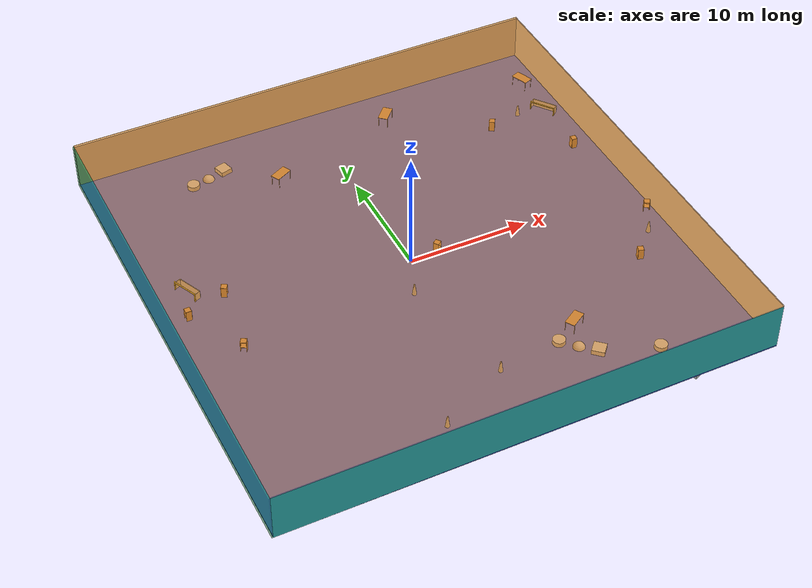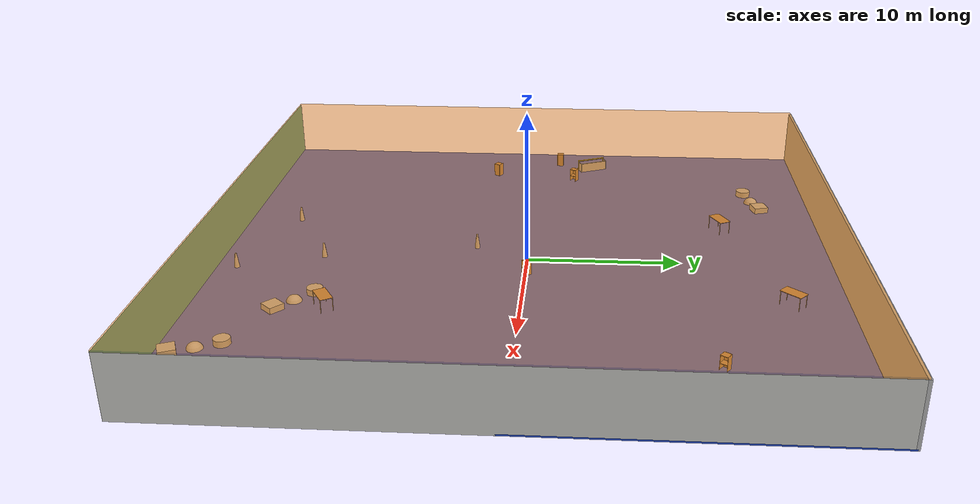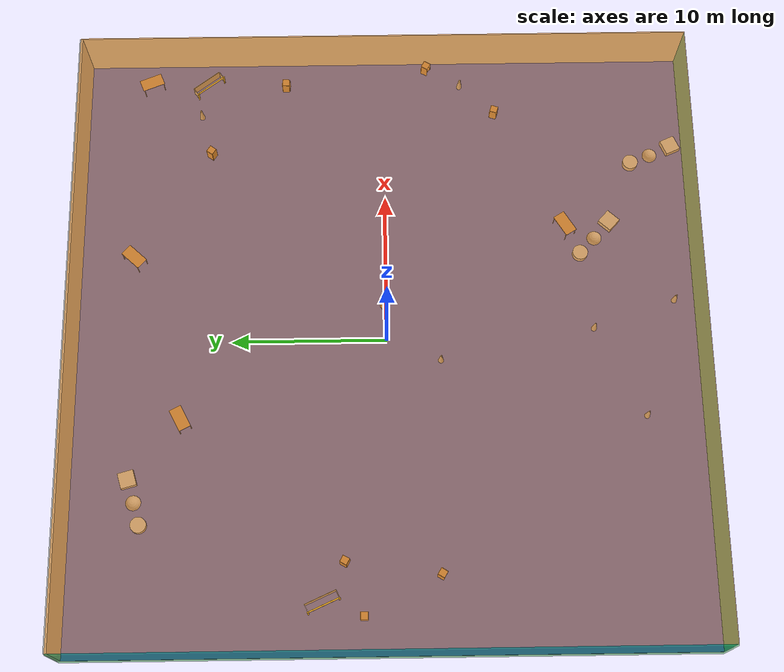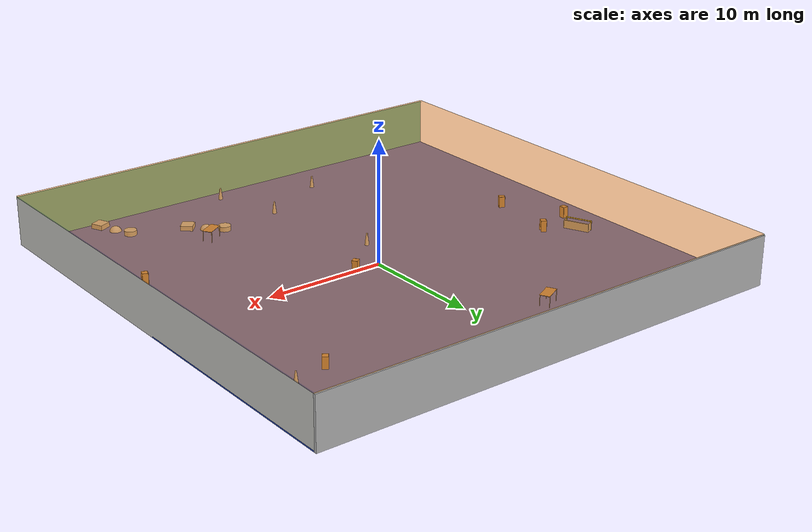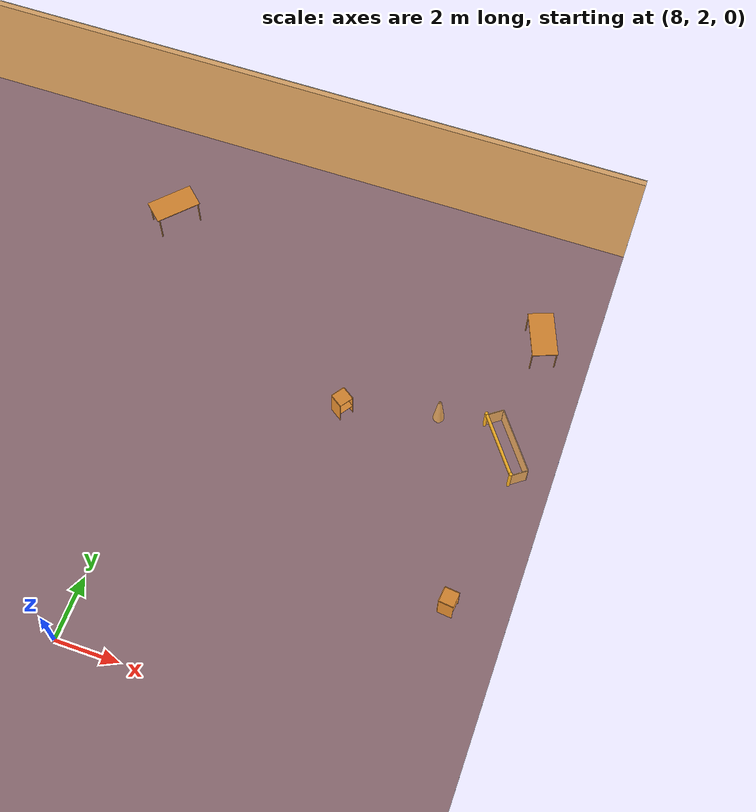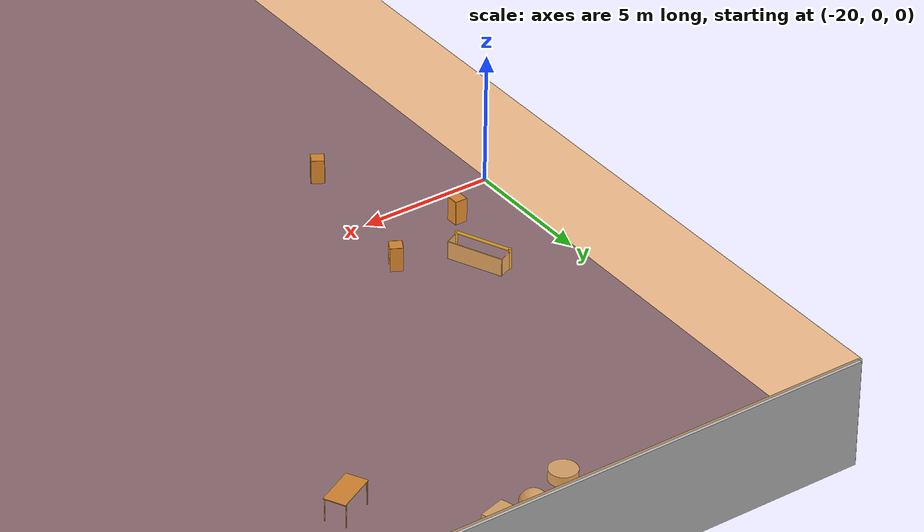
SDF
<sdf version="1.4">
 <world name="default">
  <physics type="ode">
   <max_step_size>0.001</max_step_size>
   <real_time_factor>1</real_time_factor>
   <real_time_update_rate>1000</real_time_update_rate>
   <gravity>0 0 -9.8</gravity>
  </physics>
  <scene><ambient>0.4 0.4 0.4 1</ambient><background>0.7 0.7 0.7 1</background><shadows>1</shadows></scene>
  <model name="Surrounding">
   <static>1</static>
   <link name="Ceiling">
    <collision name="Ceiling_Collision"><geometry><box><size>40 40 0.1</size></box></geometry></collision>
    <visual name="Ceiling_Visual">
     <geometry><box><size>40 40 0.1</size></box></geometry>
     <material>
      <script>
       <uri>file://media/materials/scripts/gazebo.material</uri>
       <name>Gazebo/OrangeTransparent</name>
      </script>
     </material>
    </visual>
    <pose>0 0 4.05 0 0 0</pose>
   </link>
   <link name="Wall_South">
    <collision name="Wall_South_Collision">
     <geometry><box><size>40 0 4</size></box></geometry>
     <pose>0 0 2 0 -0 0</pose>
    </collision>
    <visual name="Wall_South_Visual">
     <pose>0 0 2 0 -0 0</pose>
     <geometry><box><size>40 0 4</size></box></geometry>
     <material>
      <script><uri>file://media/materials/scripts/gazebo.material</uri><name>Gazebo/TurquoiseGlow</name></script>
     </material>
    </visual>
    <velocity_decay><linear>0</linear><angular>0</angular></velocity_decay>
    <pose>0 -20 0 0 -0 0</pose>
   </link>
   <link name="Wall_East">
    <collision name="Wall_21_Collision">
     <geometry><box><size>40 0 4</size></box></geometry>
     <pose>0 0 2 0 -0 0</pose>
    </collision>
    <visual name="Wall_21_Visual">
     <pose>0 0 2 0 -0 0</pose>
     <geometry><box><size>40 0 4</size></box></geometry>
     <material>
      <script><uri>file://media/materials/scripts/gazebo.material</uri><name>Gazebo/CeilingTiled</name></script>
     </material>
    </visual>
    <velocity_decay><linear>0</linear><angular>0</angular></velocity_decay>
    <pose>20 0 0 0 -0 1.5708</pose>
   </link>
   <link name="Wall_North">
    <collision name="Wall_22_Collision">
     <geometry><box><size>40 0.2 4</size></box></geometry>
     <pose>0 0 2 0 -0 0</pose>
    </collision>
    <visual name="Wall_22_Visual">
     <pose>0 0 2 0 -0 0</pose>
     <geometry><box><size>40 0.2 4</size></box></geometry>
     <material>
      <script><uri>file://media/materials/scripts/gazebo.material</uri><name>Gazebo/Pioneer2Body</name></script>
     </material>
    </visual>
    <velocity_decay><linear>0</linear><angular>0</angular></velocity_decay>
    <pose>0 20 0 0 -0 0</pose>
   </link>
   <link name="Wall_West">
    <collision name="Wall_23_Collision">
     <geometry><box><size>40 0.2 4</size></box></geometry>
     <pose>0 0 2 0 -0 0</pose>
    </collision>
    <visual name="Wall_23_Visual">
     <pose>0 0 2 0 -0 0</pose>
     <geometry><box><size>40 0.2 4</size></box></geometry>
     <material>
      <script><uri>file://media/materials/scripts/gazebo.material</uri><name>Gazebo/GreenTransparent</name></script>
     </material>
    </visual>
    <velocity_decay><linear>0</linear><angular>0</angular></velocity_decay>
    <pose>-20 0 0 0 0 -1.5708</pose>
   </link>
   <link name="Ground_link">
    <collision name="collision">
     <pose>0 0 .05 0 -0 0</pose>
     <geometry><box><size>40 40 0.1</size></box></geometry>
    </collision>
    <visual name="visual">
     <pose>0 0 .05 0 -0 0</pose>
     <geometry><box><size>40 40 0.1</size></box></geometry>
     <material>
      <script><uri>file://media/materials/scripts/gazebo.material</uri><name>Gazebo/BlueLaser</name></script>
     </material>
    </visual>
   </link>
   <static>1</static>
  </model>
  <spherical_coordinates>
   <surface_model>EARTH_WGS84</surface_model>
   <latitude_deg>0</latitude_deg>
   <longitude_deg>0</longitude_deg>
   <elevation>0</elevation>
   <heading_deg>0</heading_deg>
  </spherical_coordinates>
  <light name="lightball_0" type="diffuse">
   <diffuse>0.8 0.8 0.8 1</diffuse>
   <specular>0.2 0.2 0.2 1</specular>
   <attenuation>
    <range>100</range>
    <constant>0.7</constant>
    <linear>0.01</linear>
    <quadratic>0.001</quadratic>
   </attenuation>
   <direction>-0.5 0.1 -0.9</direction>
   <pose>-18.1199409581 -17.3472903174 1.64450559808 0 0 0</pose>
  </light>
  <light name="lightball_1" type="diffuse">
   <diffuse>0.8 0.8 0.8 1</diffuse>
   <specular>0.2 0.2 0.2 1</specular>
   <attenuation>
    <range>100</range>
    <constant>0.7</constant>
    <linear>0.01</linear>
    <quadratic>0.001</quadratic>
   </attenuation>
   <direction>-0.5 0.1 -0.9</direction>
   <pose>12.3560744678 -18.7266612196 0.562377889379 0 0 0</pose>
  </light>
  <light name="lightball_2" type="diffuse">
   <diffuse>0.8 0.8 0.8 1</diffuse>
   <specular>0.2 0.2 0.2 1</specular>
   <attenuation>
    <range>100</range>
    <constant>0.7</constant>
    <linear>0.01</linear>
    <quadratic>0.001</quadratic>
   </attenuation>
   <direction>-0.5 0.1 -0.9</direction>
   <pose>18.1567644439 -0.459195672067 2.9651020018 0 0 0</pose>
  </light>
  <light name="lightball_3" type="diffuse">
   <diffuse>0.8 0.8 0.8 1</diffuse>
   <specular>0.2 0.2 0.2 1</specular>
   <attenuation>
    <range>100</range>
    <constant>0.7</constant>
    <linear>0.01</linear>
    <quadratic>0.001</quadratic>
   </attenuation>
   <direction>-0.5 0.1 -0.9</direction>
   <pose>-3.46898912321 9.98540529407 2.00456885599 0 0 0</pose>
  </light>
  <light name="lightball_4" type="diffuse">
   <diffuse>0.8 0.8 0.8 1</diffuse>
   <specular>0.2 0.2 0.2 1</specular>
   <attenuation>
    <range>100</range>
    <constant>0.7</constant>
    <linear>0.01</linear>
    <quadratic>0.001</quadratic>
   </attenuation>
   <direction>-0.5 0.1 -0.9</direction>
   <pose>-8.30533251935 13.1417839348 3.31917629468 0 0 0</pose>
  </light>
  <light name="lightball_5" type="diffuse">
   <diffuse>0.8 0.8 0.8 1</diffuse>
   <specular>0.2 0.2 0.2 1</specular>
   <attenuation>
    <range>100</range>
    <constant>0.7</constant>
    <linear>0.01</linear>
    <quadratic>0.001</quadratic>
   </attenuation>
   <direction>-0.5 0.1 -0.9</direction>
   <pose>-14.460102279 3.4444152889 1.6528105341 0 0 0</pose>
  </light>
  <light name="lightball_6" type="diffuse">
   <diffuse>0.8 0.8 0.8 1</diffuse>
   <specular>0.2 0.2 0.2 1</specular>
   <attenuation>
    <range>100</range>
    <constant>0.7</constant>
    <linear>0.01</linear>
    <quadratic>0.001</quadratic>
   </attenuation>
   <direction>-0.5 0.1 -0.9</direction>
   <pose>-18.5629126868 -8.65334032622 2.4379685351 0 0 0</pose>
  </light>
  <light name="lightball_7" type="diffuse">
   <diffuse>0.8 0.8 0.8 1</diffuse>
   <specular>0.2 0.2 0.2 1</specular>
   <attenuation>
    <range>100</range>
    <constant>0.7</constant>
    <linear>0.01</linear>
    <quadratic>0.001</quadratic>
   </attenuation>
   <direction>-0.5 0.1 -0.9</direction>
   <pose>3.13776922094 -7.30758565954 2.39168241836 0 0 0</pose>
  </light>
  <light name="lightball_8" type="diffuse">
   <diffuse>0.8 0.8 0.8 1</diffuse>
   <specular>0.2 0.2 0.2 1</specular>
   <attenuation>
    <range>100</range>
    <constant>0.7</constant>
    <linear>0.01</linear>
    <quadratic>0.001</quadratic>
   </attenuation>
   <direction>-0.5 0.1 -0.9</direction>
   <pose>-5.25566786257 -14.5812622574 1.1076088668 0 0 0</pose>
  </light>
  <light name="lightball_9" type="diffuse">
   <diffuse>0.8 0.8 0.8 1</diffuse>
   <specular>0.2 0.2 0.2 1</specular>
   <attenuation>
    <range>100</range>
    <constant>0.7</constant>
    <linear>0.01</linear>
    <quadratic>0.001</quadratic>
   </attenuation>
   <direction>-0.5 0.1 -0.9</direction>
   <pose>7.38504717596 1.01239207128 3.39739155549 0 0 0</pose>
  </light>
  <light name="lightball_10" type="diffuse">
   <diffuse>0.8 0.8 0.8 1</diffuse>
   <specular>0.2 0.2 0.2 1</specular>
   <attenuation>
    <range>100</range>
    <constant>0.7</constant>
    <linear>0.01</linear>
    <quadratic>0.001</quadratic>
   </attenuation>
   <direction>-0.5 0.1 -0.9</direction>
   <pose>12.5857525828 16.4011565694 2.57593600567 0 0 0</pose>
  </light>
  <light name="lightball_11" type="diffuse">
   <diffuse>0.8 0.8 0.8 1</diffuse>
   <specular>0.2 0.2 0.2 1</specular>
   <attenuation>
    <range>100</range>
    <constant>0.7</constant>
    <linear>0.01</linear>
    <quadratic>0.001</quadratic>
   </attenuation>
   <direction>-0.5 0.1 -0.9</direction>
   <pose>-17.5400328721 19.3962669351 2.55556387698 0 0 0</pose>
  </light>
  <light name="lightball_12" type="diffuse">
   <diffuse>0.8 0.8 0.8 1</diffuse>
   <specular>0.2 0.2 0.2 1</specular>
   <attenuation>
    <range>100</range>
    <constant>0.7</constant>
    <linear>0.01</linear>
    <quadratic>0.001</quadratic>
   </attenuation>
   <direction>-0.5 0.1 -0.9</direction>
   <pose>7.60871384739 1.95415581055 2.99051962303 0 0 0</pose>
  </light>
  <light name="lightball_13" type="diffuse">
   <diffuse>0.8 0.8 0.8 1</diffuse>
   <specular>0.2 0.2 0.2 1</specular>
   <attenuation>
    <range>100</range>
    <constant>0.7</constant>
    <linear>0.01</linear>
    <quadratic>0.001</quadratic>
   </attenuation>
   <direction>-0.5 0.1 -0.9</direction>
   <pose>7.87493419143 -10.8844555924 3.16233151768 0 0 0</pose>
  </light>
  <include><uri>model://cabinet</uri><pose>-17.671886101 1.6085855893 0 0 0 0.00366535899582</pose></include>
  <include>
   <uri>model://robocup_3Dsim_goal</uri>
   <pose>-16.9918084596 4.05552362333 0 0 0 0.422545787695</pose>
  </include>
  <include><uri>model://cabinet</uri><pose>-15.1619840253 -3.18233147544 0 0 0 1.02679535335</pose></include>
  <include><uri>model://cabinet</uri><pose>-14.307556645 2.77799976914 0 0 0 2.64114337998</pose></include>
  <include>
   <uri>model://textured_shapes</uri>
   <pose>-10.4394190058 15.9278765605 0 0 0 1.8446535592</pose>
  </include>
  <include>
   <uri>model://construction_cone</uri>
   <pose>-5.25846180174 -16.4125622949 0 0 0 2.8472727402</pose>
  </include>
  <include><uri>model://table</uri><pose>-5.26174183948 13.079954504 0 0 0 0.470533027016</pose></include>
  <include>
   <uri>model://construction_cone</uri>
   <pose>-1.41230397351 -3.43363965536 0 0 0 2.66375701268</pose>
  </include>
  <include>
   <uri>model://construction_cone</uri>
   <pose>0.61166539744 -13.3743628607 0 0 0 0.84493030012</pose>
  </include>
  <include>
   <uri>model://construction_cone</uri>
   <pose>2.47208458439 -18.6980704547 0 0 0 0.673886271189</pose>
  </include>
  <include><uri>model://cabinet</uri><pose>2.30664636241 0.113471907309 0 0 0 2.16041192757</pose></include>
  <include>
   <uri>model://textured_shapes</uri>
   <pose>6.9119067155 -13.7542882694 0 0 0 0.834584806024</pose>
  </include>
  <include><uri>model://table</uri><pose>7.62941386341 -11.7791751409 0 0 0 0.553112685354</pose></include>
  <include><uri>model://table</uri><pose>5.67275479944 16.4032534878 0 0 0 0.826545389728</pose></include>
  <include>
   <uri>model://textured_shapes</uri>
   <pose>12.8536491889 -17.8257095413 0 0 0 0.412819849285</pose>
  </include>
  <include><uri>model://cabinet</uri><pose>13.2492215117 11.5541735812 0 0 0 2.54592667612</pose></include>
  <include><uri>model://cabinet</uri><pose>16.0378691936 -7.42463614565 0 0 0 2.83214663727</pose></include>
  <include>
   <uri>model://construction_cone</uri>
   <pose>16.1073474717 12.3174560311 0 0 0 0.563699877513</pose>
  </include>
  <include>
   <uri>model://construction_cone</uri>
   <pose>18.1925537438 -5.16919068993 0 0 0 1.73249170677</pose>
  </include>
  <include><uri>model://cabinet</uri><pose>19.4121276745 -2.90230135262 0 0 0 1.065292885</pose></include>
  <include><uri>model://cabinet</uri><pose>18.2294033386 6.60973189204 0 0 0 3.04383069786</pose></include>
  <include>
   <uri>model://robocup_3Dsim_goal</uri>
   <pose>18.13963859 11.7054500335 0 0 0 0.642272851454</pose>
  </include>
  <include><uri>model://table</uri><pose>18.3596179024 15.6908915938 0 0 0 1.9453555424</pose></include>
 </world>
</sdf>

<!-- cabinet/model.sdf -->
<sdf version="1.5">
  <model name="cabinet">
    <static>true</static>
    <link name="cabinet_bottom_plate">
      <inertial>
        <pose>0 0 -1 0 0 0</pose>
        <inertia>
          <ixx>2.050000</ixx>
          <ixy>0</ixy>
          <ixz>0</ixz>
          <iyy>2.050000</iyy>
          <iyz>0</iyz>
          <izz>2.050000</izz>
        </inertia>
        <mass>25.000000</mass>
      </inertial>
      <collision name="cabinet_bottom_plate_geom">
        <pose>0 0 0.010000 0 0 0</pose>
        <geometry>
          <box>
            <size>0.450000 0.450000 0.020000</size>
          </box>
        </geometry>
      </collision>
      <visual name="cabinet_bottom_plate_geom_visual">
        <pose>0 0 0.010000 0 0 0</pose>
        <geometry>
          <box>
            <size>0.450000 0.450000 0.020000</size>
          </box>
        </geometry>
        <material>
          <script>
            <uri>model://media/materials/scripts/gazebo.material</uri>
            <name>Gazebo/Wood</name>
          </script>
        </material>
      </visual>
      <collision name="cabinet_bottom_plate_geom_cabinet_back_plate">
        <pose>0.235000 0 0.510000 0 0 0</pose>
        <geometry>
          <box>
            <size>0.020000 0.450000 1.020000</size>
          </box>
        </geometry>
      </collision>
      <visual name="cabinet_bottom_plate_geom_cabinet_back_plate_visual">
        <pose>0.235000 0 0.510000 0 0 0</pose>
        <geometry>
          <box>
            <size>0.020000 0.450000 1.020000</size>
          </box>
        </geometry>
        <material>
          <script>
            <uri>model://media/materials/scripts/gazebo.material</uri>
            <name>Gazebo/Wood</name>
          </script>
        </material>
      </visual>
      <collision name="cabinet_bottom_plate_geom_cabinet_left_plate">
        <pose>0 0.235000 0.510000 0 0 0</pose>
        <geometry>
          <box>
            <size>0.450000 0.020000 1.020000</size>
          </box>
        </geometry>
      </collision>
      <visual name="cabinet_bottom_plate_geom_cabinet_left_plate_visual">
        <pose>0 0.235000 0.510000 0 0 0</pose>
        <geometry>
          <box>
            <size>0.450000 0.020000 1.020000</size>
          </box>
        </geometry>
        <material>
          <script>
            <uri>model://media/materials/scripts/gazebo.material</uri>
            <name>Gazebo/Wood</name>
          </script>
        </material>
      </visual>
      <collision name="cabinet_bottom_plate_geom_cabinet_middle_plate">
        <pose>0 0 0.510000 0 0 0</pose>
        <geometry>
          <box>
            <size>0.450000 0.450000 0.020000</size>
          </box>
        </geometry>
      </collision>
      <visual name="cabinet_bottom_plate_geom_cabinet_middle_plate_visual">
        <pose>0 0 0.510000 0 0 0</pose>
        <geometry>
          <box>
            <size>0.450000 0.450000 0.020000</size>
          </box>
        </geometry>
        <material>
          <script>
            <uri>model://media/materials/scripts/gazebo.material</uri>
            <name>Gazebo/Wood</name>
          </script>
        </material>
      </visual>
      <collision name="cabinet_bottom_plate_geom_cabinet_right_plate">
        <pose>0 -0.235000 0.510000 0 0 0</pose>
        <geometry>
          <box>
            <size>0.450000 0.020000 1.020000</size>
          </box>
        </geometry>
      </collision>
      <visual name="cabinet_bottom_plate_geom_cabinet_right_plate_visual">
        <pose>0 -0.235000 0.510000 0 0 0</pose>
        <geometry>
          <box>
            <size>0.450000 0.020000 1.020000</size>
          </box>
        </geometry>
        <material>
          <script>
            <uri>model://media/materials/scripts/gazebo.material</uri>
            <name>Gazebo/Wood</name>
          </script>
        </material>
      </visual>
      <collision name="cabinet_bottom_plate_geom_cabinet_top_plate">
        <pose>0 0 1.010000 0 0 0</pose>
        <geometry>
          <box>
            <size>0.450000 0.450000 0.020000</size>
          </box>
        </geometry>
      </collision>
      <visual name="cabinet_bottom_plate_geom_cabinet_top_plate_visual">
        <pose>0 0 1.010000 0 0 0</pose>
        <geometry>
          <box>
            <size>0.450000 0.450000 0.020000</size>
          </box>
        </geometry>
        <material>
          <script>
            <uri>model://media/materials/scripts/gazebo.material</uri>
            <name>Gazebo/Wood</name>
          </script>
        </material>
      </visual>
    </link>
  </model>
</sdf>

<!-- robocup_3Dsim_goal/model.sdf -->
<sdf version="1.5">
  <model name="robocup_3d_goal">
    <static>true</static>
    <link name="left_post">
      <pose>0 1.05 0.45 0 0 0</pose>
      <collision name="collision">
        <geometry>
          <cylinder>
            <radius>0.05</radius>
            <length>0.9</length>
          </cylinder>
        </geometry>
      </collision>
      <visual name="visual">
        <geometry>
          <cylinder>
            <radius>0.05</radius>
            <length>0.9</length>
          </cylinder>
        </geometry>
        <material>
          <script>
            <uri>file://media/materials/scripts/gazebo.material</uri>
            <name>Gazebo/ZincYellow</name>
          </script>
        </material>
      </visual>
    </link>
    <link name="left_support_horiz_lower">
      <pose>0.30 1.05 0.01 0 0 0</pose>
      <collision name="collision">
        <geometry>
          <box>
            <size>0.50 0.02 0.02</size>
          </box>
        </geometry>
      </collision>
      <visual name="visual">
        <geometry>
          <box>
            <size>0.50 0.02 0.02</size>
          </box>
        </geometry>
        <material>
          <script>
            <uri>file://media/materials/scripts/gazebo.material</uri>
            <name>Gazebo/White</name>
          </script>
        </material>
      </visual>
    </link>
    <link name="left_support_horiz_upper">
      <pose>0.30 1.05 0.79 0 0 0</pose>
      <collision name="collision">
        <geometry>
          <box>
            <size>0.50 0.02 0.02</size>
          </box>
        </geometry>
      </collision>
      <visual name="visual">
        <geometry>
          <box>
            <size>0.50 0.02 0.02</size>
          </box>
        </geometry>
        <material>
          <script>
            <uri>file://media/materials/scripts/gazebo.material</uri>
            <name>Gazebo/White</name>
          </script>
        </material>
      </visual>
    </link>
    <link name="left_support_vertical">
      <pose>0.56 1.05 0.4 0 1.5708 0</pose>
      <collision name="collision">
        <geometry>
          <box>
            <size>0.80 0.02 0.02</size>
          </box>
        </geometry>
      </collision>
      <visual name="visual">
        <geometry>
          <box>
            <size>0.80 0.02 0.02</size>
          </box>
        </geometry>
        <material>
          <script>
            <uri>file://media/materials/scripts/gazebo.material</uri>
            <name>Gazebo/White</name>
          </script>
        </material>
      </visual>
    </link>
    <link name="right_support_horiz_lower">
      <pose>0.30 -1.05 0.01 0 0 0</pose>
      <collision name="collision">
        <geometry>
          <box>
            <size>0.50 0.02 0.02</size>
          </box>
        </geometry>
      </collision>
      <visual name="visual">
        <geometry>
          <box>
            <size>0.50 0.02 0.02</size>
          </box>
        </geometry>
        <material>
          <script>
            <uri>file://media/materials/scripts/gazebo.material</uri>
            <name>Gazebo/White</name>
          </script>
        </material>
      </visual>
    </link>
    <link name="right_support_horiz_upper">
      <pose>0.30 -1.05 0.79 0 0 0</pose>
      <collision name="collision">
        <geometry>
          <box>
            <size>0.50 0.02 0.02</size>
          </box>
        </geometry>
      </collision>
      <visual name="visual">
        <geometry>
          <box>
            <size>0.50 0.02 0.02</size>
          </box>
        </geometry>
        <material>
          <script>
            <uri>file://media/materials/scripts/gazebo.material</uri>
            <name>Gazebo/White</name>
          </script>
        </material>
      </visual>
    </link>
    <link name="right_support_vertical">
      <pose>0.56 -1.05 0.4 0 1.5708 0</pose>
      <collision name="collision">
        <geometry>
          <box>
            <size>0.80 0.02 0.02</size>
          </box>
        </geometry>
      </collision>
      <visual name="visual">
        <geometry>
          <box>
            <size>0.80 0.02 0.02</size>
          </box>
        </geometry>
        <material>
          <script>
            <uri>file://media/materials/scripts/gazebo.material</uri>
            <name>Gazebo/White</name>
          </script>
        </material>
      </visual>
    </link>
    <link name="center_support_horiz_lower">
      <pose>0.56 0 0.01 0 1.5708 0</pose>
      <collision name="collision">
        <geometry>
          <box>
            <size>0.02 2.08 0.02</size>
          </box>
        </geometry>
      </collision>
      <visual name="visual">
        <geometry>
          <box>
            <size>0.02 2.08 0.02</size>
          </box>
        </geometry>
        <material>
          <script>
            <uri>file://media/materials/scripts/gazebo.material</uri>
            <name>Gazebo/White</name>
          </script>
        </material>
      </visual>
    </link>
    <link name="center_support_horiz_upper">
      <pose>0.56 0 0.79 0 1.5708 0</pose>
      <collision name="collision">
        <geometry>
          <box>
            <size>0.02 2.08 0.02</size>
          </box>
        </geometry>
      </collision>
      <visual name="visual">
        <geometry>
          <box>
            <size>0.02 2.08 0.02</size>
          </box>
        </geometry>
        <material>
          <script>
            <uri>file://media/materials/scripts/gazebo.material</uri>
            <name>Gazebo/White</name>
          </script>
        </material>
      </visual>
    </link>
    <link name="right_post">
      <pose>0 -1.05 0.45 0 0 0</pose>
      <collision name="collision">
        <geometry>
          <cylinder>
            <radius>0.05</radius>
            <length>0.9</length>
          </cylinder>
        </geometry>
      </collision>
      <visual name="visual">
        <geometry>
          <cylinder>
            <radius>0.05</radius>
            <length>0.9</length>
          </cylinder>
        </geometry>
        <material>
          <script>
            <uri>file://media/materials/scripts/gazebo.material</uri>
            <name>Gazebo/ZincYellow</name>
          </script>
        </material>
      </visual>
    </link>
    <link name="crossbar">
      <pose>0 0 0.85 1.57 1.57 0</pose>
      <collision name="collision">
        <geometry>
          <cylinder>
            <radius>0.05</radius>
            <length>2.0</length>
          </cylinder>
        </geometry>
      </collision>
      <visual name="visual">
        <geometry>
          <cylinder>
            <radius>0.05</radius>
            <length>2.0</length>
          </cylinder>
        </geometry>
        <material>
          <script>
            <uri>file://media/materials/scripts/gazebo.material</uri>
            <name>Gazebo/ZincYellow</name>
          </script>
        </material>
      </visual>
    </link>
    <link name="center_net">
      <pose>0.56 0 0.40 0 0 0</pose>
      <collision name="collision">
        <geometry>
          <box>
            <size>0.01 2.1 0.80</size>
          </box>
        </geometry>
      </collision>
      <visual name="visual">
        <geometry>
          <box>
            <size>0.01 2.1 0.80</size>
          </box>
        </geometry>
        <material>
          <script>
            <uri>model://../model_source/models/robocup09_spl_field/materials/scripts/</uri>
            <uri>model://../model_source/models/robocup09_spl_field/materials/textures/</uri>
            <name>RoboCup/Net</name>
          </script>
        </material>
      </visual>
    </link>
    <link name="left_net">
      <pose>0.30 1.05 0.40 0 0 0</pose>
      <collision name="collision">
        <geometry>
          <box>
            <size>0.50 0.01 0.76</size>
          </box>
        </geometry>
      </collision>
      <visual name="visual">
        <geometry>
          <box>
            <size>0.50 0.01 0.76</size>
          </box>
        </geometry>
        <material>
          <script>
            <uri>model://../model_source/models/robocup09_spl_field/materials/scripts/</uri>
            <uri>model://../model_source/models/robocup09_spl_field/materials/textures/</uri>
            <name>RoboCup/Net</name>
          </script>
        </material>
      </visual>
    </link>
    <link name="right_net">
      <pose>0.30 -1.05 0.40 0 0 0</pose>
      <collision name="collision">
        <geometry>
          <box>
            <size>0.50 0.01 0.76</size>
          </box>
        </geometry>
      </collision>
      <visual name="visual">
        <geometry>
          <box>
            <size>0.50 0.01 0.76</size>
          </box>
        </geometry>
        <material>
          <script>
            <uri>model://../model_source/models/robocup09_spl_field/materials/scripts/</uri>
            <uri>model://../model_source/models/robocup09_spl_field/materials/textures/</uri>
            <name>RoboCup/Net</name>
          </script>
        </material>
      </visual>
    </link>
  </model>
</sdf>

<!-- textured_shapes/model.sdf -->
<sdf version="1.6">
  <model name="textured_shapes">
    <pose>0 0 0.5 0 0 0</pose>
    <link name="box">
      <pose>0 -1.5 0 0 0 0</pose>
      <collision name="collision">
        <geometry>
          <box>
            <size>1 1 1</size>
          </box>
        </geometry>
      </collision>
      <visual name="visual">
        <geometry>
          <box>
            <size>1 1 1</size>
          </box>
        </geometry>
        <material>
          <script>
            <uri>model://../model_source/models/textured_shapes/materials/scripts</uri>
            <uri>model://../model_source/models/textured_shapes/materials/textures</uri>
            <name>TexturedShape/Squares</name>
          </script>
        </material>
      </visual>
    </link>
    <link name="sphere">
      <collision name="collision">
        <geometry>
          <sphere>
            <radius>0.5</radius>
          </sphere>
        </geometry>
      </collision>
      <visual name="visual">
        <geometry>
          <sphere>
            <radius>0.5</radius>
          </sphere>
        </geometry>
        <material>
          <script>
            <uri>model://../model_source/models/textured_shapes/materials/scripts</uri>
            <uri>model://../model_source/models/textured_shapes/materials/textures</uri>
            <name>TexturedShape/Squares</name>
          </script>
        </material>
      </visual>
    </link>
    <link name="cylinder">
      <pose>0 1.5 0 0 0 0</pose>
      <collision name="collision">
        <geometry>
          <cylinder>
            <radius>0.5</radius>
            <length>1</length>
          </cylinder>
        </geometry>
      </collision>
      <visual name="visual">
        <geometry>
          <cylinder>
            <radius>0.5</radius>
            <length>1</length>
          </cylinder>
        </geometry>
        <material>
          <script>
            <uri>model://../model_source/models/textured_shapes/materials/scripts</uri>
            <uri>model://../model_source/models/textured_shapes/materials/textures</uri>
            <name>TexturedShape/Squares</name>
          </script>
        </material>
      </visual>
    </link>
  </model>
</sdf>

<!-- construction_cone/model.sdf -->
<sdf version="1.5">
  <model name="Construction Cone">
    <link name="link">
      <collision name="collision">
        <geometry>
          <mesh>
            <scale>10 10 10</scale>
            <uri>file://isr-testbed/construction_cone/meshes/construction_cone.dae</uri>
          </mesh>
        </geometry>
      </collision>
      <visual name="visual">
        <geometry>
          <mesh>
            <scale>10 10 10</scale>
            <uri>file://isr-testbed/construction_cone/meshes/construction_cone.dae</uri>
          </mesh>
        </geometry>
      </visual>
    </link>
  </model>
</sdf>

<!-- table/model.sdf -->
<sdf version="1.5">
  <model name="table">
    <static>true</static>
    <link name="link">
      <collision name="surface">
        <pose>0 0 1.0 0 0 0</pose>
        <geometry>
          <box>
            <size>1.5 0.8 0.03</size>
          </box>
        </geometry>
        <surface>
          <friction>
            <ode>
              <mu>0.6</mu>
              <mu2>0.6</mu2>
            </ode>
          </friction>
        </surface>
      </collision>
      <visual name="visual1">
        <pose>0 0 1.0 0 0 0</pose>
        <geometry>
          <box>
            <size>1.5 0.8 0.03</size>
          </box>
        </geometry>
        <material>
          <script>
            <uri>model://media/materials/scripts/gazebo.material</uri>
            <name>Gazebo/Wood</name>
          </script>
        </material>
      </visual>
      <collision name="front_left_leg">
        <pose>0.68 0.38 0.5 0 0 0</pose>
        <geometry>
          <cylinder>
            <radius>0.02</radius>
            <length>1.0</length>
          </cylinder>
        </geometry>
      </collision>
      <visual name="front_left_leg">
        <pose>0.68 0.38 0.5 0 0 0</pose>
        <geometry>
          <cylinder>
            <radius>0.02</radius>
            <length>1.0</length>
          </cylinder>
        </geometry>
        <material>
          <script>
            <uri>model://media/materials/scripts/gazebo.material</uri>
            <name>Gazebo/Grey</name>
          </script>
        </material>
      </visual>
      <collision name="front_right_leg">
        <pose>0.68 -0.38 0.5 0 0 0</pose>
        <geometry>
          <cylinder>
            <radius>0.02</radius>
            <length>1.0</length>
          </cylinder>
        </geometry>
      </collision>
      <visual name="front_right_leg">
        <pose>0.68 -0.38 0.5 0 0 0</pose>
        <geometry>
          <cylinder>
            <radius>0.02</radius>
            <length>1.0</length>
          </cylinder>
        </geometry>
        <material>
          <script>
            <uri>model://media/materials/scripts/gazebo.material</uri>
            <name>Gazebo/Grey</name>
          </script>
        </material>
      </visual>
      <collision name="back_right_leg">
        <pose>-0.68 -0.38 0.5 0 0 0</pose>
        <geometry>
          <cylinder>
            <radius>0.02</radius>
            <length>1.0</length>
          </cylinder>
        </geometry>
      </collision>
      <visual name="back_right_leg">
        <pose>-0.68 -0.38 0.5 0 0 0</pose>
        <geometry>
          <cylinder>
            <radius>0.02</radius>
            <length>1.0</length>
          </cylinder>
        </geometry>
        <material>
          <script>
            <uri>model://media/materials/scripts/gazebo.material</uri>
            <name>Gazebo/Grey</name>
          </script>
        </material>
      </visual>
      <collision name="back_left_leg">
        <pose>-0.68 0.38 0.5 0 0 0</pose>
        <geometry>
          <cylinder>
            <radius>0.02</radius>
            <length>1.0</length>
          </cylinder>
        </geometry>
      </collision>
      <visual name="back_left_leg">
        <pose>-0.68 0.38 0.5 0 0 0</pose>
        <geometry>
          <cylinder>
            <radius>0.02</radius>
            <length>1.0</length>
          </cylinder>
        </geometry>
        <material>
          <script>
            <uri>model://media/materials/scripts/gazebo.material</uri>
            <name>Gazebo/Grey</name>
          </script>
        </material>
      </visual>
    </link>
  </model>
</sdf>
